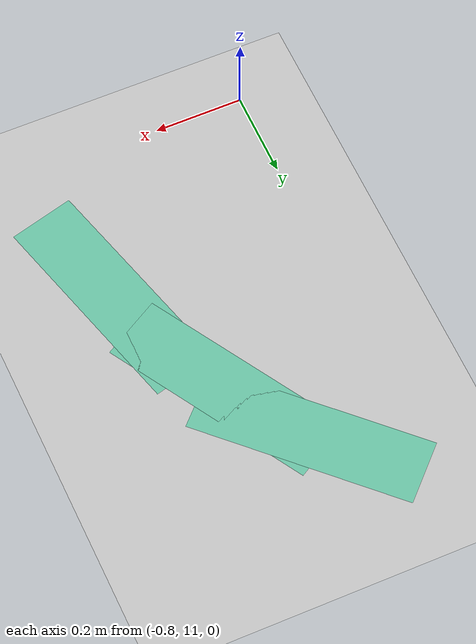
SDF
<sdf version="1.6">
 <world name="default">
  <model name="ground_plane">
   <static>1</static>
   <link name="link">
    <collision name="collision">
     <geometry><plane><normal>0 0 1</normal><size>100 100</size></plane></geometry>
     <surface><friction><ode><mu>100</mu><mu2>50</mu2></ode></friction></surface>
    </collision>
    <visual name="visual">
     <cast_shadows>0</cast_shadows>
     <geometry><plane><normal>0 0 1</normal><size>100 100</size></plane></geometry>
     <material>
      <script><uri>file://media/materials/scripts/gazebo.material</uri><name>Gazebo/Grey</name></script>
     </material>
    </visual>
   </link>
  </model>
  <model name="pomdp_path">
   <link name="Wall_157_clone">
    <pose>-8.15354 -1.84983 0 0 -0 1.8326</pose>
    <visual name="Wall_157_Visual">
     <pose>0 0 0.0001 0 -0 0</pose>
     <geometry><box><size>0.5 0.15 0</size></box></geometry>
     <material>
      <script><uri>file://media/materials/scripts/gazebo.material</uri><name>Gazebo/Grey</name></script>
      <ambient>0.435294 0.796078 0.67451 1</ambient>
      <shader type="pixel"/>
     </material>
     <meta><layer>0</layer></meta>
    </visual>
    <collision name="Wall_157_Collision">
     <pose>0 0 0.0001 0 -0 0</pose>
     <geometry><box><size>0.5 0.15 0</size></box></geometry>
     <surface>
      <friction>
       <ode><mu>1</mu><mu2>1</mu2><fdir1>0 0 0</fdir1><slip1>0</slip1><slip2>0</slip2></ode>
       <torsional>
        <coefficient>1</coefficient>
        <patch_radius>0</patch_radius>
        <surface_radius>0</surface_radius>
        <use_patch_radius>1</use_patch_radius>
        <ode><slip>0</slip></ode>
       </torsional>
      </friction>
      <bounce><restitution_coefficient>0</restitution_coefficient><threshold>1e+06</threshold></bounce>
      <contact>
       <collide_without_contact>0</collide_without_contact>
       <collide_without_contact_bitmask>1</collide_without_contact_bitmask>
       <collide_bitmask>1</collide_bitmask>
       <ode>
        <soft_cfm>0</soft_cfm>
        <soft_erp>0.2</soft_erp>
        <kp>1e+13</kp>
        <kd>1</kd>
        <max_vel>0.01</max_vel>
        <min_depth>0</min_depth>
       </ode>
       <bullet>
        <split_impulse>1</split_impulse>
        <split_impulse_penetration_threshold>-0.01</split_impulse_penetration_threshold>
        <soft_cfm>0</soft_cfm>
        <soft_erp>0.2</soft_erp>
        <kp>1e+13</kp>
        <kd>1</kd>
       </bullet>
      </contact>
     </surface>
    </collision>
   </link>
   <link name="Wall_158_clone">
    <pose>-8.0239 -2.1555 0 0 -0 2.0944</pose>
    <visual name="Wall_158_Visual">
     <pose>0 0 0.0001 0 -0 0</pose>
     <geometry><box><size>0.5 0.15 0</size></box></geometry>
     <material>
      <script><uri>file://media/materials/scripts/gazebo.material</uri><name>Gazebo/Grey</name></script>
      <ambient>0.435294 0.796078 0.67451 1</ambient>
      <shader type="pixel"/>
     </material>
     <meta><layer>0</layer></meta>
    </visual>
    <collision name="Wall_158_Collision">
     <pose>0 0 0.0001 0 -0 0</pose>
     <geometry><box><size>0.5 0.15 0</size></box></geometry>
     <surface>
      <friction>
       <ode><mu>1</mu><mu2>1</mu2><fdir1>0 0 0</fdir1><slip1>0</slip1><slip2>0</slip2></ode>
       <torsional>
        <coefficient>1</coefficient>
        <patch_radius>0</patch_radius>
        <surface_radius>0</surface_radius>
        <use_patch_radius>1</use_patch_radius>
        <ode><slip>0</slip></ode>
       </torsional>
      </friction>
      <bounce><restitution_coefficient>0</restitution_coefficient><threshold>1e+06</threshold></bounce>
      <contact>
       <collide_without_contact>0</collide_without_contact>
       <collide_without_contact_bitmask>1</collide_without_contact_bitmask>
       <collide_bitmask>1</collide_bitmask>
       <ode>
        <soft_cfm>0</soft_cfm>
        <soft_erp>0.2</soft_erp>
        <kp>1e+13</kp>
        <kd>1</kd>
        <max_vel>0.01</max_vel>
        <min_depth>0</min_depth>
       </ode>
       <bullet>
        <split_impulse>1</split_impulse>
        <split_impulse_penetration_threshold>-0.01</split_impulse_penetration_threshold>
        <soft_cfm>0</soft_cfm>
        <soft_erp>0.2</soft_erp>
        <kp>1e+13</kp>
        <kd>1</kd>
       </bullet>
      </contact>
     </surface>
    </collision>
   </link>
   <link name="Wall_159">
    <pose>-7.90885 -2.32849 0 0 0 -0.785398</pose>
    <visual name="Wall_159_Visual">
     <pose>0 0 0.0001 0 -0 0</pose>
     <geometry><box><size>0.5 0.15 0</size></box></geometry>
     <material>
      <script><uri>file://media/materials/scripts/gazebo.material</uri><name>Gazebo/Grey</name></script>
      <ambient>0.435294 0.796078 0.67451 1</ambient>
      <shader type="pixel"/>
     </material>
     <meta><layer>0</layer></meta>
    </visual>
    <collision name="Wall_159_Collision">
     <pose>0 0 0.0001 0 -0 0</pose>
     <geometry><box><size>0.5 0.15 0</size></box></geometry>
     <surface>
      <friction>
       <ode><mu>1</mu><mu2>1</mu2><fdir1>0 0 0</fdir1><slip1>0</slip1><slip2>0</slip2></ode>
       <torsional>
        <coefficient>1</coefficient>
        <patch_radius>0</patch_radius>
        <surface_radius>0</surface_radius>
        <use_patch_radius>1</use_patch_radius>
        <ode><slip>0</slip></ode>
       </torsional>
      </friction>
      <bounce><restitution_coefficient>0</restitution_coefficient><threshold>1e+06</threshold></bounce>
      <contact>
       <collide_without_contact>0</collide_without_contact>
       <collide_without_contact_bitmask>1</collide_without_contact_bitmask>
       <collide_bitmask>1</collide_bitmask>
       <ode>
        <soft_cfm>0</soft_cfm>
        <soft_erp>0.2</soft_erp>
        <kp>1e+13</kp>
        <kd>1</kd>
        <max_vel>0.01</max_vel>
        <min_depth>0</min_depth>
       </ode>
       <bullet>
        <split_impulse>1</split_impulse>
        <split_impulse_penetration_threshold>-0.01</split_impulse_penetration_threshold>
        <soft_cfm>0</soft_cfm>
        <soft_erp>0.2</soft_erp>
        <kp>1e+13</kp>
        <kd>1</kd>
       </bullet>
      </contact>
     </surface>
    </collision>
   </link>
   <static>1</static>
   <pose>-8.49995 9.50005 0 0 -0 3.14159</pose>
  </model>
 </world>
</sdf>
